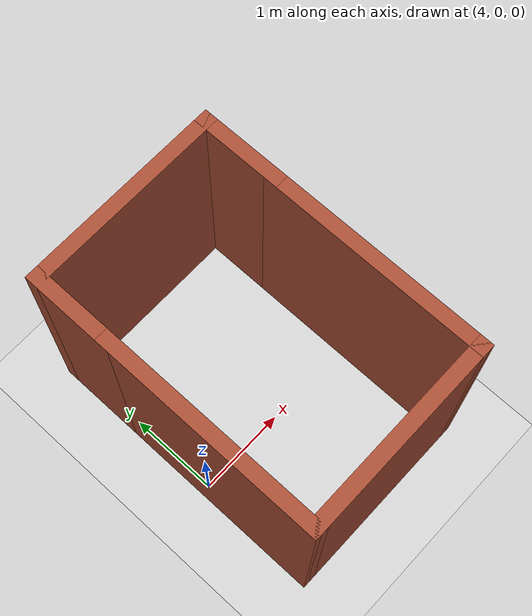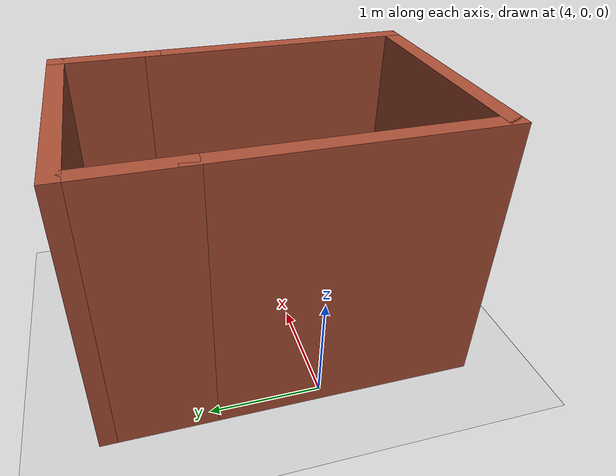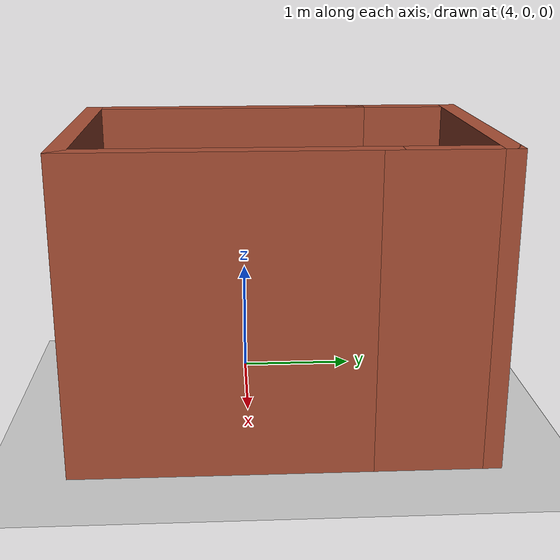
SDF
<sdf version="1.6">
 <world name="default">
  <light name="sun" type="directional">
   <pose>0 0 10 0 -0 0</pose>
   <diffuse>0.8 0.8 0.8 1</diffuse>
   <specular>0.1 0.1 0.1 1</specular>
   <attenuation>
    <range>1000</range>
    <constant>0.9</constant>
    <linear>0.01</linear>
    <quadratic>0.001</quadratic>
   </attenuation>
   <direction>-0.5 0.5 -1</direction>
  </light>
  <model name="ground_plane">
   <static>1</static>
   <link name="link">
    <collision name="collision">
     <geometry><plane><normal>0 0 1</normal><size>100 100</size></plane></geometry>
     <surface><friction><ode><mu>100</mu><mu2>50</mu2></ode></friction></surface>
    </collision>
    <visual name="visual">
     <cast_shadows>0</cast_shadows>
     <geometry><plane><normal>0 0 1</normal><size>100 100</size></plane></geometry>
     <material>
      <script><uri>file://media/materials/scripts/gazebo.material</uri><name>Gazebo/Grey</name></script>
     </material>
    </visual>
   </link>
  </model>
  <gravity>0 0 -9.8</gravity>
  <magnetic_field>6e-06 2.3e-05 -4.2e-05</magnetic_field>
  <atmosphere type="adiabatic"/>
  <physics name="default_physics" default="0" type="ode">
   <max_step_size>0.001</max_step_size>
   <real_time_factor>1</real_time_factor>
   <real_time_update_rate>1000</real_time_update_rate>
  </physics>
  <scene><ambient>0.4 0.4 0.4 1</ambient><background>0.7 0.7 0.7 1</background><shadows>1</shadows></scene>
  <spherical_coordinates>
   <surface_model>EARTH_WGS84</surface_model>
   <latitude_deg>0</latitude_deg>
   <longitude_deg>0</longitude_deg>
   <elevation>0</elevation>
   <heading_deg>0</heading_deg>
  </spherical_coordinates>
  <model name="wall_1">
   <pose>5.02 0.27 0 0 -0 0</pose>
   <link name="Wall_11">
    <collision name="Wall_11_Collision">
     <geometry><box><size>1 0.15 2.5</size></box></geometry>
     <pose>0 0 1.25 0 -0 0</pose>
    </collision>
    <visual name="Wall_11_Visual">
     <pose>0 0 1.25 0 -0 0</pose>
     <geometry><box><size>1 0.15 2.5</size></box></geometry>
     <material>
      <script><uri>file://media/materials/scripts/gazebo.material</uri><name>Gazebo/Bricks</name></script>
      <ambient>1 1 1 1</ambient>
     </material>
    </visual>
    <pose>1.05 1.175 0 0 -0 1.5708</pose>
   </link>
   <link name="Wall_12">
    <collision name="Wall_12_Collision">
     <geometry><box><size>2.25 0.15 2.5</size></box></geometry>
     <pose>0 0 1.25 0 -0 0</pose>
    </collision>
    <visual name="Wall_12_Visual">
     <pose>0 0 1.25 0 -0 0</pose>
     <geometry><box><size>2.25 0.15 2.5</size></box></geometry>
     <material>
      <script><uri>file://media/materials/scripts/gazebo.material</uri><name>Gazebo/Bricks</name></script>
      <ambient>1 1 1 1</ambient>
     </material>
    </visual>
    <pose>0 1.6 0 0 -0 3.14159</pose>
   </link>
   <link name="Wall_4">
    <collision name="Wall_4_Collision">
     <geometry><box><size>2.5 0.15 2.5</size></box></geometry>
     <pose>0 0 1.25 0 -0 0</pose>
    </collision>
    <visual name="Wall_4_Visual">
     <pose>0 0 1.25 0 -0 0</pose>
     <geometry><box><size>2.5 0.15 2.5</size></box></geometry>
     <material>
      <script><uri>file://media/materials/scripts/gazebo.material</uri><name>Gazebo/Bricks</name></script>
      <ambient>1 1 1 1</ambient>
     </material>
    </visual>
    <pose>-1.05 -0.425 0 0 0 -1.5708</pose>
   </link>
   <link name="Wall_5">
    <collision name="Wall_5_Collision">
     <geometry><box><size>2.25 0.15 2.5</size></box></geometry>
     <pose>0 0 1.25 0 -0 0</pose>
    </collision>
    <visual name="Wall_5_Visual">
     <pose>0 0 1.25 0 -0 0</pose>
     <geometry><box><size>2.25 0.15 2.5</size></box></geometry>
     <material>
      <script><uri>file://media/materials/scripts/gazebo.material</uri><name>Gazebo/Bricks</name></script>
      <ambient>1 1 1 1</ambient>
     </material>
    </visual>
    <pose>0 -1.6 0 0 -0 0</pose>
   </link>
   <link name="Wall_6">
    <collision name="Wall_6_Collision">
     <geometry><box><size>2.5 0.15 2.5</size></box></geometry>
     <pose>0 0 1.25 0 -0 0</pose>
    </collision>
    <visual name="Wall_6_Visual">
     <pose>0 0 1.25 0 -0 0</pose>
     <geometry><box><size>2.5 0.15 2.5</size></box></geometry>
     <material>
      <script><uri>file://media/materials/scripts/gazebo.material</uri><name>Gazebo/Bricks</name></script>
      <ambient>1 1 1 1</ambient>
     </material>
    </visual>
    <pose>1.05 -0.425 0 0 -0 1.5708</pose>
   </link>
   <link name="Wall_9">
    <collision name="Wall_9_Collision">
     <geometry><box><size>1 0.15 2.5</size></box></geometry>
     <pose>0 0 1.25 0 -0 0</pose>
    </collision>
    <visual name="Wall_9_Visual">
     <pose>0 0 1.25 0 -0 0</pose>
     <geometry><box><size>1 0.15 2.5</size></box></geometry>
     <material>
      <script><uri>file://media/materials/scripts/gazebo.material</uri><name>Gazebo/Bricks</name></script>
      <ambient>1 1 1 1</ambient>
     </material>
    </visual>
    <pose>-1.05 1.175 0 0 0 -1.5708</pose>
   </link>
   <static>1</static>
  </model>
 </world>
</sdf>
